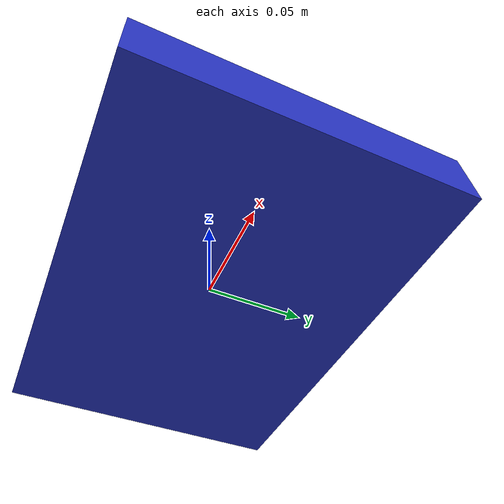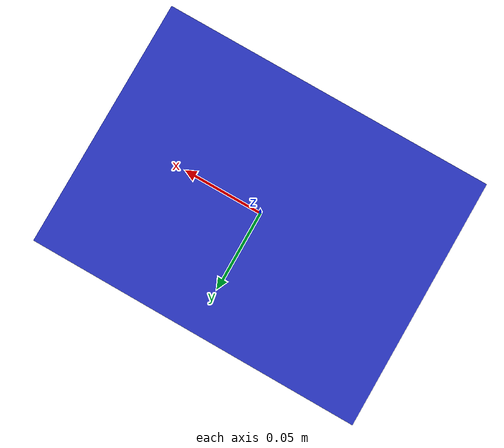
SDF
<?xml version="1.0"?>
<sdf version="1.6">
  <model name="blue_book">
    <link name="link">
      <inertial>
        <mass>0.35</mass>
        <inertia>
          <ixx>0.00068</ixx><ixy>0</ixy><ixz>0</ixz>
          <iyy>0.00120</iyy><iyz>0</iyz>
          <izz>0.00182</izz>
        </inertia>
      </inertial>
      <collision name="collision">
        <geometry>
          <box><size>0.20 0.15 0.03</size></box>
        </geometry>
        <surface>
          <friction><ode><mu>0.8</mu><mu2>0.8</mu2></ode></friction>
          <contact><ode><max_vel>0.01</max_vel><min_depth>0.001</min_depth></ode></contact>
        </surface>
      </collision>
      <visual name="visual">
        <geometry>
          <box><size>0.20 0.15 0.03</size></box>
        </geometry>
        <material>
          <ambient>0.1 0.15 0.6 1</ambient>
          <diffuse>0.15 0.2 0.75 1</diffuse>
          <specular>0.3 0.3 0.3 1</specular>
        </material>
      </visual>
    </link>
  </model>
</sdf>
